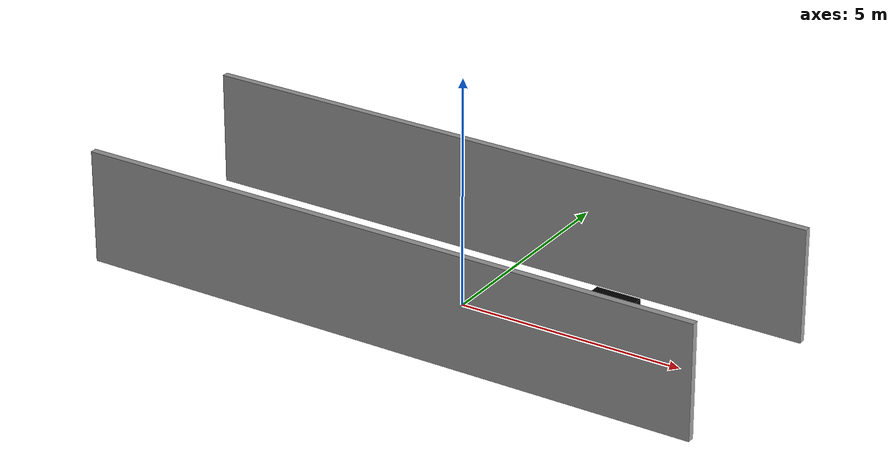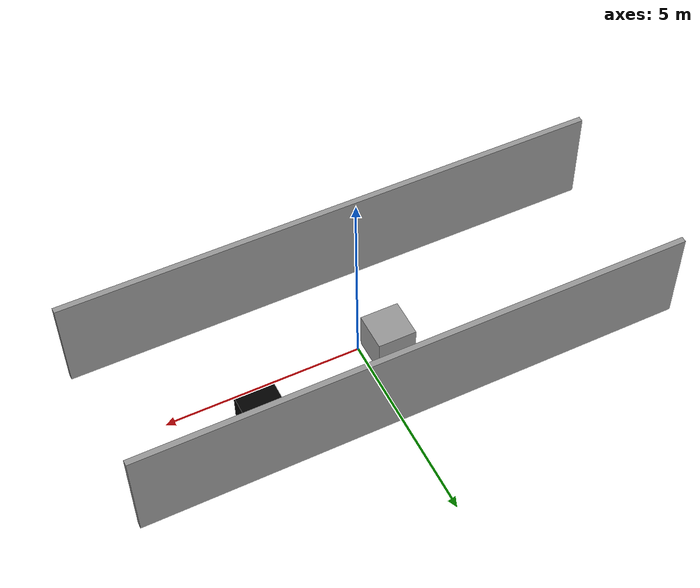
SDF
<?xml version='1.0'?>
<sdf version='1.6'>
  <model name='box'>
    <link name='link'>
      <self_collide>0</self_collide>
      <inertial>
        <inertia>
          <ixx>1</ixx>
          <ixy>0</ixy>
          <ixz>0</ixz>
          <iyy>1</iyy>
          <iyz>0</iyz>
          <izz>1</izz>
        </inertia>
        <mass>1</mass>
        <pose frame=''>0 0 0 0 -0 0</pose>
      </inertial>
      <enable_wind>0</enable_wind>
      <kinematic>0</kinematic>
      <pose frame=''>2.87868 0.804442 0 0 -0 0</pose>
      <gravity>1</gravity>
      <visual name='visual'>
        <geometry>
          <box>
            <size>1 1 1</size>
          </box>
        </geometry>
        <pose frame=''>0 0 0 0 -0 0</pose>
        <transparency>0</transparency>
        <cast_shadows>1</cast_shadows>
        <material>
          <shader type='vertex'>
            <normal_map>__default__</normal_map>
          </shader>
          <script>
            <name>ModelPreview_2::link::visual_MATERIAL_</name>
          </script>
          <ambient>0 0 0 1</ambient>
          <diffuse>0 0 0 1</diffuse>
          <specular>0 0 0 1</specular>
          <emissive>0 0 0 1</emissive>
        </material>
      </visual>
      <collision name='collision'>
        <laser_retro>0</laser_retro>
        <max_contacts>10</max_contacts>
        <pose frame=''>0 0 0 0 -0 0</pose>
        <geometry>
          <box>
            <size>1 1 1</size>
          </box>
        </geometry>
        <surface>
          <friction>
            <ode>
              <mu>1</mu>
              <mu2>1</mu2>
              <fdir1>0 0 0</fdir1>
              <slip1>0</slip1>
              <slip2>0</slip2>
            </ode>
            <torsional>
              <coefficient>1</coefficient>
              <patch_radius>0</patch_radius>
              <surface_radius>0</surface_radius>
              <use_patch_radius>1</use_patch_radius>
              <ode>
                <slip>0</slip>
              </ode>
            </torsional>
          </friction>
          <bounce>
            <restitution_coefficient>0</restitution_coefficient>
            <threshold>1e+06</threshold>
          </bounce>
          <contact>
            <collide_without_contact>0</collide_without_contact>
            <collide_without_contact_bitmask>1</collide_without_contact_bitmask>
            <collide_bitmask>1</collide_bitmask>
            <ode>
              <soft_cfm>0</soft_cfm>
              <soft_erp>0.2</soft_erp>
              <kp>1e+13</kp>
              <kd>1</kd>
              <max_vel>0.01</max_vel>
              <min_depth>0</min_depth>
            </ode>
            <bullet>
              <split_impulse>1</split_impulse>
              <split_impulse_penetration_threshold>-0.01</split_impulse_penetration_threshold>
              <soft_cfm>0</soft_cfm>
              <soft_erp>0.2</soft_erp>
              <kp>1e+13</kp>
              <kd>1</kd>
            </bullet>
          </contact>
        </surface>
      </collision>
    </link>
    <link name='link_0'>
      <inertial>
        <mass>1</mass>
        <inertia>
          <ixx>0.166667</ixx>
          <ixy>0</ixy>
          <ixz>0</ixz>
          <iyy>0.166667</iyy>
          <iyz>0</iyz>
          <izz>0.166667</izz>
        </inertia>
        <pose frame=''>0 0 0 0 -0 0</pose>
      </inertial>
      <pose frame=''>-0.816378 0.009286 0 0 -0 0</pose>
      <gravity>1</gravity>
      <self_collide>0</self_collide>
      <kinematic>0</kinematic>
      <enable_wind>0</enable_wind>
      <visual name='visual'>
        <pose frame=''>0 0 0 0 -0 0</pose>
        <geometry>
          <box>
            <size>1 1 1</size>
          </box>
        </geometry>
        <material>
          <lighting>1</lighting>
          <script>
            <uri>file://media/materials/scripts/gazebo.material</uri>
            <name>Gazebo/Grey</name>
          </script>
          <shader type='vertex'>
            <normal_map>__default__</normal_map>
          </shader>
        </material>
        <transparency>0</transparency>
        <cast_shadows>1</cast_shadows>
      </visual>
      <collision name='collision'>
        <laser_retro>0</laser_retro>
        <max_contacts>10</max_contacts>
        <pose frame=''>0 0 0 0 -0 0</pose>
        <geometry>
          <box>
            <size>1 1 1</size>
          </box>
        </geometry>
        <surface>
          <friction>
            <ode>
              <mu>1</mu>
              <mu2>1</mu2>
              <fdir1>0 0 0</fdir1>
              <slip1>0</slip1>
              <slip2>0</slip2>
            </ode>
            <torsional>
              <coefficient>1</coefficient>
              <patch_radius>0</patch_radius>
              <surface_radius>0</surface_radius>
              <use_patch_radius>1</use_patch_radius>
              <ode>
                <slip>0</slip>
              </ode>
            </torsional>
          </friction>
          <bounce>
            <restitution_coefficient>0</restitution_coefficient>
            <threshold>1e+06</threshold>
          </bounce>
          <contact>
            <collide_without_contact>0</collide_without_contact>
            <collide_without_contact_bitmask>1</collide_without_contact_bitmask>
            <collide_bitmask>1</collide_bitmask>
            <ode>
              <soft_cfm>0</soft_cfm>
              <soft_erp>0.2</soft_erp>
              <kp>1e+13</kp>
              <kd>1</kd>
              <max_vel>0.01</max_vel>
              <min_depth>0</min_depth>
            </ode>
            <bullet>
              <split_impulse>1</split_impulse>
              <split_impulse_penetration_threshold>-0.01</split_impulse_penetration_threshold>
              <soft_cfm>0</soft_cfm>
              <soft_erp>0.2</soft_erp>
              <kp>1e+13</kp>
              <kd>1</kd>
            </bullet>
          </contact>
        </surface>
      </collision>
    </link>
    <model name='model_corridor_1'>
      <pose frame=''>-0.474864 -0.03653 0 0 -0 0</pose>
      <link name='Wall_10'>
        <collision name='Wall_10_Collision'>
          <geometry>
            <box>
              <size>14 0.15 2.5</size>
            </box>
          </geometry>
          <pose frame=''>0 0 1.25 0 -0 0</pose>
        </collision>
        <visual name='Wall_10_Visual'>
          <pose frame=''>0 0 1.25 0 -0 0</pose>
          <geometry>
            <box>
              <size>14 0.15 2.5</size>
            </box>
          </geometry>
          <material>
            <script>
              <uri>file://media/materials/scripts/gazebo.material</uri>
              <name>Gazebo/Grey</name>
            </script>
            <ambient>1 1 1 1</ambient>
          </material>
          <meta>
            <layer>0</layer>
          </meta>
        </visual>
        <pose frame=''>-0 2.3 0 0 -0 0</pose>
      </link>
      <link name='Wall_18'>
        <collision name='Wall_18_Collision'>
          <geometry>
            <box>
              <size>14 0.15 2.5</size>
            </box>
          </geometry>
          <pose frame=''>0 0 1.25 0 -0 0</pose>
        </collision>
        <visual name='Wall_18_Visual'>
          <pose frame=''>0 0 1.25 0 -0 0</pose>
          <geometry>
            <box>
              <size>14 0.15 2.5</size>
            </box>
          </geometry>
          <material>
            <script>
              <uri>file://media/materials/scripts/gazebo.material</uri>
              <name>Gazebo/Grey</name>
            </script>
            <ambient>1 1 1 1</ambient>
          </material>
          <meta>
            <layer>0</layer>
          </meta>
        </visual>
        <pose frame=''>-0 -2.3 0 0 -0 3.14159</pose>
      </link>
      <static>1</static>
    </model>
    <static>0</static>
    <allow_auto_disable>1</allow_auto_disable>
    <plugin name='push_animate' filename='libanimated_box.so'/>
  </model>
</sdf>
